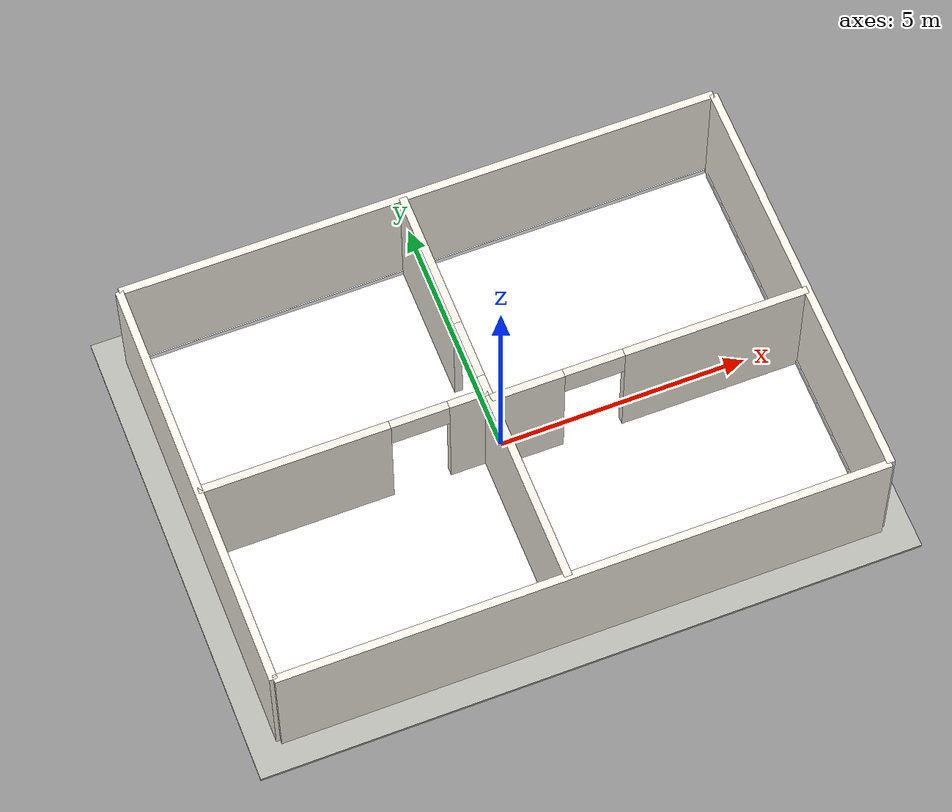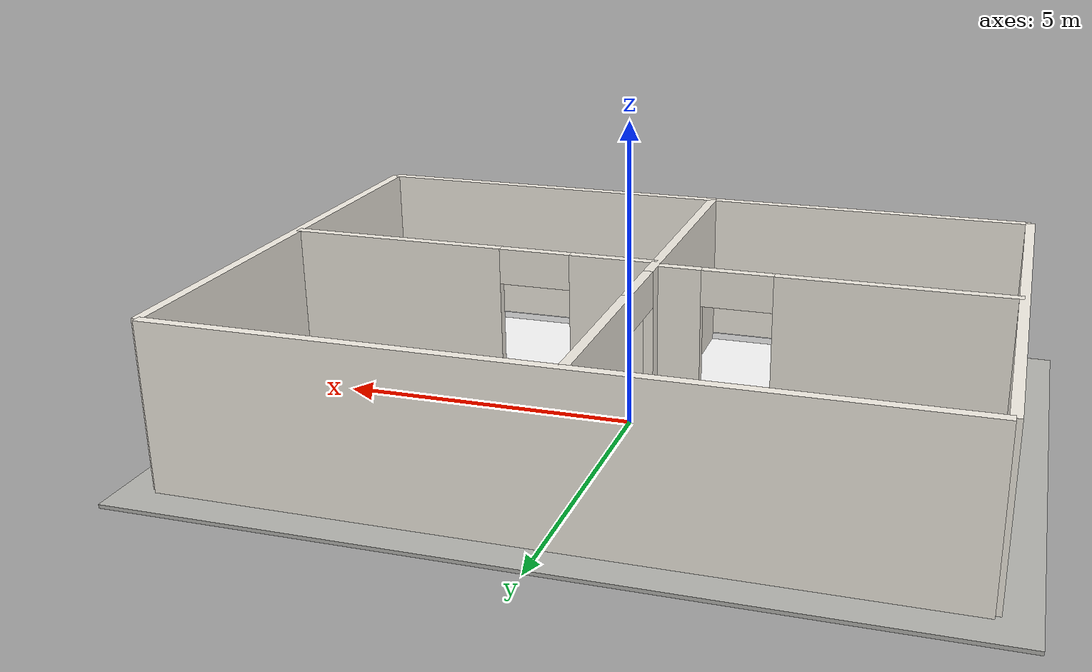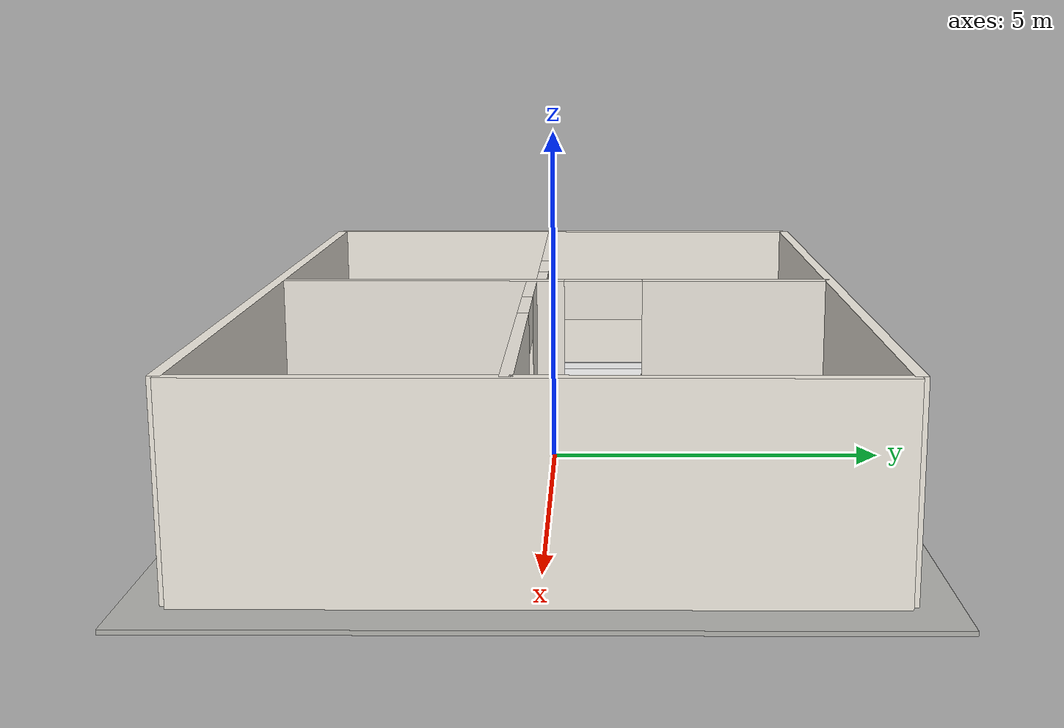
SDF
<?xml version="1.0"?>
<sdf version="1.9">
  <model name="house_shell">
    <static>true</static>
    <link name="link">

      <visual name="base_slab_visual">
        <pose>0 0 -0.05 0 0 0</pose>
        <geometry><box><size>13.2 9.7 0.06</size></box></geometry>
        <material>
          <ambient>0.58 0.58 0.57 1</ambient>
          <diffuse>0.72 0.72 0.70 1</diffuse>
        </material>
      </visual>
      <collision name="base_slab_collision">
        <pose>0 0 -0.05 0 0 0</pose>
        <geometry><box><size>13.2 9.7 0.06</size></box></geometry>
      </collision>

      <visual name="floor_visual">
        <pose>0 0 -0.006 0 0 0</pose>
        <geometry><box><size>12.0 8.5 0.012</size></box></geometry>
        <material>
          <ambient>1 1 1 1</ambient>
          <diffuse>1 1 1 1</diffuse>
          <specular>0.05 0.05 0.05 1</specular>
          <pbr>
            <metal>
              <albedo_map>materials/textures/floor_albedo.jpg</albedo_map>
              <normal_map>materials/textures/floor_normal.jpg</normal_map>
              <roughness_map>materials/textures/floor_roughness.jpg</roughness_map>
              <metalness>0.0</metalness>
            </metal>
          </pbr>
        </material>
      </visual>
      <collision name="floor_collision">
        <pose>0 0 -0.006 0 0 0</pose>
        <geometry><box><size>12.0 8.5 0.012</size></box></geometry>
      </collision>

      <visual name="baseboard_west">
        <pose>-5.92 0 0.06 0 0 0</pose>
        <geometry><box><size>0.05 8.10 0.12</size></box></geometry>
        <material><ambient>1 1 1 1</ambient><diffuse>1 1 1 1</diffuse><specular>0.05 0.05 0.05 1</specular><pbr><metal><albedo_map>materials/textures/baseboard_albedo.jpg</albedo_map><normal_map>materials/textures/baseboard_normal.jpg</normal_map><roughness_map>materials/textures/baseboard_roughness.jpg</roughness_map><metalness>0.0</metalness></metal></pbr></material>
      </visual>
      <visual name="baseboard_east">
        <pose>5.92 0 0.06 0 0 0</pose>
        <geometry><box><size>0.05 8.10 0.12</size></box></geometry>
        <material><ambient>1 1 1 1</ambient><diffuse>1 1 1 1</diffuse><specular>0.05 0.05 0.05 1</specular><pbr><metal><albedo_map>materials/textures/baseboard_albedo.jpg</albedo_map><normal_map>materials/textures/baseboard_normal.jpg</normal_map><roughness_map>materials/textures/baseboard_roughness.jpg</roughness_map><metalness>0.0</metalness></metal></pbr></material>
      </visual>
      <visual name="baseboard_north">
        <pose>0 4.17 0.06 0 0 0</pose>
        <geometry><box><size>11.80 0.05 0.12</size></box></geometry>
        <material><ambient>1 1 1 1</ambient><diffuse>1 1 1 1</diffuse><specular>0.05 0.05 0.05 1</specular><pbr><metal><albedo_map>materials/textures/baseboard_albedo.jpg</albedo_map><normal_map>materials/textures/baseboard_normal.jpg</normal_map><roughness_map>materials/textures/baseboard_roughness.jpg</roughness_map><metalness>0.0</metalness></metal></pbr></material>
      </visual>
      <visual name="baseboard_south">
        <pose>0 -4.17 0.06 0 0 0</pose>
        <geometry><box><size>11.80 0.05 0.12</size></box></geometry>
        <material><ambient>1 1 1 1</ambient><diffuse>1 1 1 1</diffuse><specular>0.05 0.05 0.05 1</specular><pbr><metal><albedo_map>materials/textures/baseboard_albedo.jpg</albedo_map><normal_map>materials/textures/baseboard_normal.jpg</normal_map><roughness_map>materials/textures/baseboard_roughness.jpg</roughness_map><metalness>0.0</metalness></metal></pbr></material>
      </visual>
      <visual name="baseboard_mid_lower">
        <pose>-0.27 -2.05 0.06 0 0 0</pose>
        <geometry><box><size>0.05 4.18 0.12</size></box></geometry>
        <material><ambient>1 1 1 1</ambient><diffuse>1 1 1 1</diffuse><specular>0.05 0.05 0.05 1</specular><pbr><metal><albedo_map>materials/textures/baseboard_albedo.jpg</albedo_map><normal_map>materials/textures/baseboard_normal.jpg</normal_map><roughness_map>materials/textures/baseboard_roughness.jpg</roughness_map><metalness>0.0</metalness></metal></pbr></material>
      </visual>
      <visual name="baseboard_mid_upper">
        <pose>-0.27 2.80 0.06 0 0 0</pose>
        <geometry><box><size>0.05 2.68 0.12</size></box></geometry>
        <material><ambient>1 1 1 1</ambient><diffuse>1 1 1 1</diffuse><specular>0.05 0.05 0.05 1</specular><pbr><metal><albedo_map>materials/textures/baseboard_albedo.jpg</albedo_map><normal_map>materials/textures/baseboard_normal.jpg</normal_map><roughness_map>materials/textures/baseboard_roughness.jpg</roughness_map><metalness>0.0</metalness></metal></pbr></material>
      </visual>
      <visual name="baseboard_left_divider_a">
        <pose>-4.14 -0.12 0.06 0 0 0</pose>
        <geometry><box><size>3.55 0.05 0.12</size></box></geometry>
        <material><ambient>1 1 1 1</ambient><diffuse>1 1 1 1</diffuse><specular>0.05 0.05 0.05 1</specular><pbr><metal><albedo_map>materials/textures/baseboard_albedo.jpg</albedo_map><normal_map>materials/textures/baseboard_normal.jpg</normal_map><roughness_map>materials/textures/baseboard_roughness.jpg</roughness_map><metalness>0.0</metalness></metal></pbr></material>
      </visual>
      <visual name="baseboard_left_divider_b">
        <pose>-0.74 -0.12 0.06 0 0 0</pose>
        <geometry><box><size>0.60 0.05 0.12</size></box></geometry>
        <material><ambient>1 1 1 1</ambient><diffuse>1 1 1 1</diffuse><specular>0.05 0.05 0.05 1</specular><pbr><metal><albedo_map>materials/textures/baseboard_albedo.jpg</albedo_map><normal_map>materials/textures/baseboard_normal.jpg</normal_map><roughness_map>materials/textures/baseboard_roughness.jpg</roughness_map><metalness>0.0</metalness></metal></pbr></material>
      </visual>
      <visual name="baseboard_right_divider_a">
        <pose>0.38 -0.27 0.06 0 0 0</pose>
        <geometry><box><size>1.28 0.05 0.12</size></box></geometry>
        <material><ambient>1 1 1 1</ambient><diffuse>1 1 1 1</diffuse><specular>0.05 0.05 0.05 1</specular><pbr><metal><albedo_map>materials/textures/baseboard_albedo.jpg</albedo_map><normal_map>materials/textures/baseboard_normal.jpg</normal_map><roughness_map>materials/textures/baseboard_roughness.jpg</roughness_map><metalness>0.0</metalness></metal></pbr></material>
      </visual>
      <visual name="baseboard_right_divider_b">
        <pose>4.15 -0.27 0.06 0 0 0</pose>
        <geometry><box><size>3.54 0.05 0.12</size></box></geometry>
        <material><ambient>1 1 1 1</ambient><diffuse>1 1 1 1</diffuse><specular>0.05 0.05 0.05 1</specular><pbr><metal><albedo_map>materials/textures/baseboard_albedo.jpg</albedo_map><normal_map>materials/textures/baseboard_normal.jpg</normal_map><roughness_map>materials/textures/baseboard_roughness.jpg</roughness_map><metalness>0.0</metalness></metal></pbr></material>
      </visual>

      <!-- outer walls -->
      <collision name="wall_west">
        <pose>-6.0 0.0 1.35 0 0 0</pose>
        <geometry><box><size>0.16 8.5 2.7</size></box></geometry>
      </collision>
      <visual name="wall_west_visual">
        <pose>-6.0 0.0 1.35 0 0 0</pose>
        <geometry><box><size>0.16 8.5 2.7</size></box></geometry>
        <material><ambient>0.90 0.88 0.84 1</ambient><diffuse>0.97 0.95 0.91 1</diffuse></material>
      </visual>

      <collision name="wall_east">
        <pose>6.0 0.0 1.35 0 0 0</pose>
        <geometry><box><size>0.16 8.5 2.7</size></box></geometry>
      </collision>
      <visual name="wall_east_visual">
        <pose>6.0 0.0 1.35 0 0 0</pose>
        <geometry><box><size>0.16 8.5 2.7</size></box></geometry>
        <material><ambient>0.90 0.88 0.84 1</ambient><diffuse>0.97 0.95 0.91 1</diffuse></material>
      </visual>

      <collision name="wall_north">
        <pose>0.0 4.25 1.35 0 0 0</pose>
        <geometry><box><size>12.0 0.16 2.7</size></box></geometry>
      </collision>
      <visual name="wall_north_visual">
        <pose>0.0 4.25 1.35 0 0 0</pose>
        <geometry><box><size>12.0 0.16 2.7</size></box></geometry>
        <material><ambient>0.90 0.88 0.84 1</ambient><diffuse>0.97 0.95 0.91 1</diffuse></material>
      </visual>

      <collision name="wall_south">
        <pose>0.0 -4.25 1.35 0 0 0</pose>
        <geometry><box><size>12.0 0.16 2.7</size></box></geometry>
      </collision>
      <visual name="wall_south_visual">
        <pose>0.0 -4.25 1.35 0 0 0</pose>
        <geometry><box><size>12.0 0.16 2.7</size></box></geometry>
        <material><ambient>0.90 0.88 0.84 1</ambient><diffuse>0.97 0.95 0.91 1</diffuse></material>
      </visual>

      <!-- center hall wall -->
      <collision name="mid_wall_bottom">
        <pose>-0.35 -2.05 1.35 0 0 0</pose>
        <geometry><box><size>0.16 4.40 2.7</size></box></geometry>
      </collision>
      <visual name="mid_wall_bottom_visual">
        <pose>-0.35 -2.05 1.35 0 0 0</pose>
        <geometry><box><size>0.16 4.40 2.7</size></box></geometry>
        <material><ambient>0.88 0.86 0.82 1</ambient><diffuse>0.95 0.93 0.89 1</diffuse></material>
      </visual>

      <collision name="mid_wall_top">
        <pose>-0.35 2.80 1.35 0 0 0</pose>
        <geometry><box><size>0.16 2.90 2.7</size></box></geometry>
      </collision>
      <visual name="mid_wall_top_visual">
        <pose>-0.35 2.80 1.35 0 0 0</pose>
        <geometry><box><size>0.16 2.90 2.7</size></box></geometry>
        <material><ambient>0.88 0.86 0.82 1</ambient><diffuse>0.95 0.93 0.89 1</diffuse></material>
      </visual>

      <collision name="mid_door_header">
        <pose>-0.35 0.75 2.40 0 0 0</pose>
        <geometry><box><size>0.16 1.20 0.60</size></box></geometry>
      </collision>
      <visual name="mid_door_header_visual">
        <pose>-0.35 0.75 2.40 0 0 0</pose>
        <geometry><box><size>0.16 1.20 0.60</size></box></geometry>
        <material><ambient>0.88 0.86 0.82 1</ambient><diffuse>0.95 0.93 0.89 1</diffuse></material>
      </visual>

      <!-- left-side room divider -->
      <collision name="left_divider_left">
        <pose>-4.1375 -0.20 1.35 0 0 0</pose>
        <geometry><box><size>3.725 0.16 2.7</size></box></geometry>
      </collision>
      <visual name="left_divider_left_visual">
        <pose>-4.1375 -0.20 1.35 0 0 0</pose>
        <geometry><box><size>3.725 0.16 2.7</size></box></geometry>
        <material><ambient>0.88 0.86 0.82 1</ambient><diffuse>0.95 0.93 0.89 1</diffuse></material>
      </visual>

      <collision name="left_divider_right">
        <pose>-0.7375 -0.20 1.35 0 0 0</pose>
        <geometry><box><size>0.775 0.16 2.7</size></box></geometry>
      </collision>
      <visual name="left_divider_right_visual">
        <pose>-0.7375 -0.20 1.35 0 0 0</pose>
        <geometry><box><size>0.775 0.16 2.7</size></box></geometry>
        <material><ambient>0.88 0.86 0.82 1</ambient><diffuse>0.95 0.93 0.89 1</diffuse></material>
      </visual>

      <collision name="left_door_header">
        <pose>-1.70 -0.20 2.40 0 0 0</pose>
        <geometry><box><size>1.15 0.16 0.60</size></box></geometry>
      </collision>
      <visual name="left_door_header_visual">
        <pose>-1.70 -0.20 2.40 0 0 0</pose>
        <geometry><box><size>1.15 0.16 0.60</size></box></geometry>
        <material><ambient>0.88 0.86 0.82 1</ambient><diffuse>0.95 0.93 0.89 1</diffuse></material>
      </visual>

      <!-- bedroom divider -->
      <collision name="right_divider_left">
        <pose>0.375 -0.35 1.35 0 0 0</pose>
        <geometry><box><size>1.45 0.16 2.7</size></box></geometry>
      </collision>
      <visual name="right_divider_left_visual">
        <pose>0.375 -0.35 1.35 0 0 0</pose>
        <geometry><box><size>1.45 0.16 2.7</size></box></geometry>
        <material><ambient>0.88 0.86 0.82 1</ambient><diffuse>0.95 0.93 0.89 1</diffuse></material>
      </visual>

      <collision name="right_divider_right">
        <pose>4.15 -0.35 1.35 0 0 0</pose>
        <geometry><box><size>3.70 0.16 2.7</size></box></geometry>
      </collision>
      <visual name="right_divider_right_visual">
        <pose>4.15 -0.35 1.35 0 0 0</pose>
        <geometry><box><size>3.70 0.16 2.7</size></box></geometry>
        <material><ambient>0.88 0.86 0.82 1</ambient><diffuse>0.95 0.93 0.89 1</diffuse></material>
      </visual>

      <collision name="right_door_header">
        <pose>1.70 -0.35 2.40 0 0 0</pose>
        <geometry><box><size>1.20 0.16 0.60</size></box></geometry>
      </collision>
      <visual name="right_door_header_visual">
        <pose>1.70 -0.35 2.40 0 0 0</pose>
        <geometry><box><size>1.20 0.16 0.60</size></box></geometry>
        <material><ambient>0.88 0.86 0.82 1</ambient><diffuse>0.95 0.93 0.89 1</diffuse></material>
      </visual>

    </link>
  </model>
</sdf>
